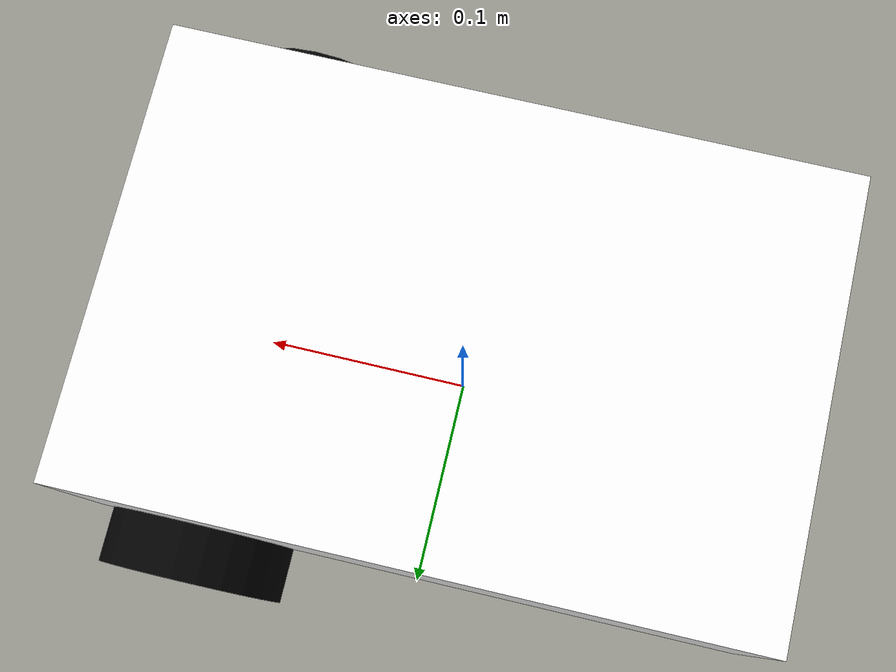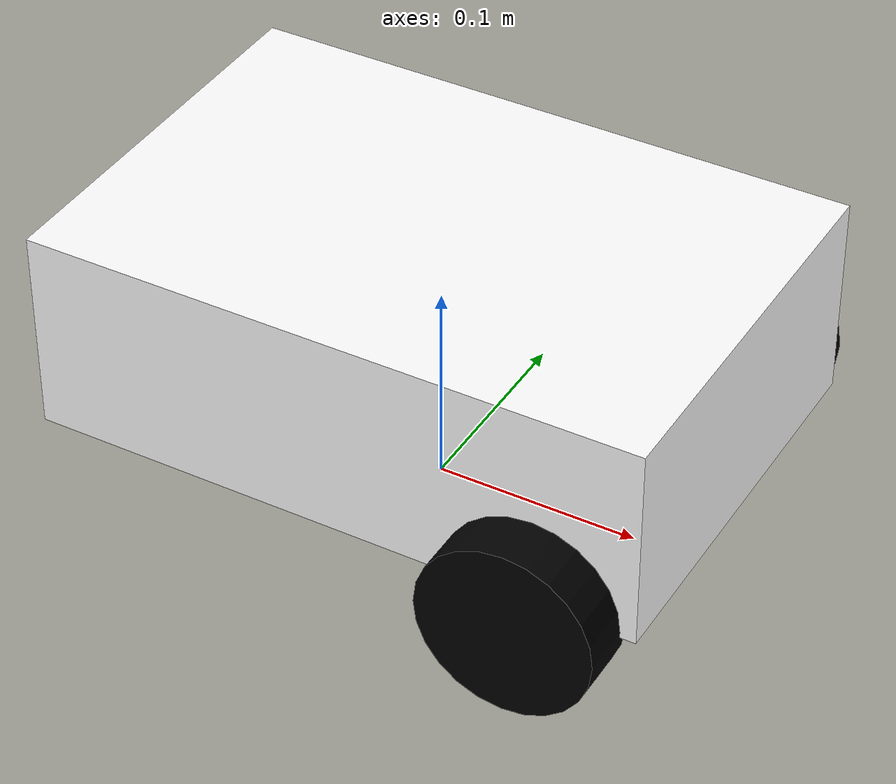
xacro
<?xml version="1.0"?>
<robot xmlns:xacro="http://www.ros.org/wiki/xacro">

  <!-- PROPERTIES (tweak here if needed) -->
  <xacro:property name="wheel_radius" value="0.0425"/>
  <xacro:property name="wheel_width"  value="0.03"/>
  <xacro:property name="wheel_separation" value="0.22"/>  <!-- distance between left and right wheel centers -->
  <xacro:property name="body_length" value="0.30"/>
  <xacro:property name="body_width"  value="0.20"/>
  <xacro:property name="body_height" value="0.10"/>
  <xacro:property name="base_z" value="0.09"/>

  <!-- MATERIALS -->
  <material name="blue"><color rgba="0 0 0.8 1"/></material>
  <material name="black"><color rgba="0 0 0 1"/></material>
  <material name="white"><color rgba="1 1 1 1"/></material>

  <!-- BASE LINK -->
  <link name="base_link">
    <visual>
      <origin xyz="0 0 ${base_z}"/>
      <geometry>
        <box size="${body_length} ${body_width} ${body_height}"/>
      </geometry>
      <material name="white"/>
    </visual>

    <collision>
      <origin xyz="0 0 ${base_z}"/>
      <geometry>
        <box size="${body_length} ${body_width} ${body_height}"/>
      </geometry>
    </collision>

    <inertial>
      <!-- Use a reasonable simple inertial (tweak for realistic sim) -->
      <origin xyz="0 0 ${base_z}"/>
      <mass value="3.0"/>
      <inertia ixx="0.03" iyy="0.03" izz="0.03" ixy="0.0" ixz="0.0" iyz="0.0"/>
    </inertial>
  </link>

  <!-- BASE FOOTPRINT (ground-level frame for navigation) -->
  <link name="base_footprint"/>

  <joint name="base_footprint_joint" type="fixed">
    <parent link="base_link"/>
    <child link="base_footprint"/>
    <origin xyz="0 0 -${base_z}"/>
  </joint>

  <!-- RIGHT WHEEL -->
  <link name="right_wheel">
    <visual>
      <!-- Cylinder oriented so rotation axis is Y (we rotate about Y) -->
      <origin rpy="1.5708 0 0" xyz="0 0 0"/>
      <geometry>
        <cylinder radius="${wheel_radius}" length="${wheel_width}"/>
      </geometry>
      <material name="black"/>
    </visual>

    <collision>
      <origin rpy="1.5708 0 0" xyz="0 0 0"/>
      <geometry>
        <cylinder radius="${wheel_radius}" length="${wheel_width}"/>
      </geometry>
    </collision>

    <inertial>
      <origin xyz="0 0 0"/>
      <mass value="0.3"/>
      <!-- approximate wheel inertia -->
      <inertia ixx="0.0005" iyy="0.0005" izz="0.0005" ixy="0.0" ixz="0.0" iyz="0.0"/>
    </inertial>
  </link>

  <joint name="body_right_wheel" type="continuous">
    <parent link="base_link"/>
    <child link="right_wheel"/>
    <!-- place wheel at front-right of base (x, y, z) -->
    <origin xyz="0.10 0.11 ${wheel_radius}"/>
    <!-- rotation axis: Y (spins to drive +x) -->
    <axis xyz="0 1 0"/>
  </joint>

  <!-- LEFT WHEEL -->
  <link name="left_wheel">
    <visual>
      <origin rpy="1.5708 0 0" xyz="0 0 0"/>
      <geometry>
        <cylinder radius="${wheel_radius}" length="${wheel_width}"/>
      </geometry>
      <material name="black"/>
    </visual>

    <collision>
      <origin rpy="1.5708 0 0" xyz="0 0 0"/>
      <geometry>
        <cylinder radius="${wheel_radius}" length="${wheel_width}"/>
      </geometry>
    </collision>

    <inertial>
      <origin xyz="0 0 0"/>
      <mass value="0.3"/>
      <inertia ixx="0.0005" iyy="0.0005" izz="0.0005" ixy="0.0" ixz="0.0" iyz="0.0"/>
    </inertial>
  </link>

  <joint name="body_left_wheel" type="continuous">
    <parent link="base_link"/>
    <child link="left_wheel"/>
    <origin xyz="0.10 -0.11 ${wheel_radius}"/>
    <axis xyz="0 1 0"/>
  </joint>

  <!-- CENTER SUPPORT (non-driven) -->
  <link name="center_spherical_wheel" type = "fixed">
    <visual>
      <origin xyz="-0.10 0 ${wheel_radius}"/>
      <geometry>
        <sphere radius="0.04"/>
      </geometry>
      <material name="blue"/>
    </visual>

    <collision>
      <origin xyz="-0.10 0 ${wheel_radius}"/>
      <geometry>
        <sphere radius="0.04"/>
      </geometry>
    </collision>

    <inertial>
      <mass value="0.05"/>
      <inertia ixx="1e-4" iyy="1e-4" izz="1e-4" ixy="0" ixz="0" iyz="0"/>
    </inertial>
  </link>
  <gazebo reference="center_spherical_wheel">
        <material>Gazebo/Black</material>
        <mu1 value="0.001"/>
        <mu2 value="0.001"/>
  </gazebo>

  <joint name="body_center_spherical_wheel" type="fixed">
    <parent link="base_link"/>
    <child link="center_spherical_wheel"/>
  </joint>

  <!-- Optional: simple placeholder collision geometry for wheels if needed -->
  <!-- (Already done above by using cylinder collision) -->

  <!--
       GAZEBO PLUGINS (for ROS2 integration)
 -->

  <!-- Differential-drive plugin: listens to /cmd_vel and actuates left/right joints -->
  <gazebo>
    <plugin name="gazebo_diff_drive" filename="libgazebo_ros_diff_drive.so">
      <ros>
        <namespace>/</namespace>
        <!-- ensure this matches where you will publish teleop cmd_vel -->
        <remapping>cmd_vel:=/cmd_vel</remapping>
      </ros>

      <!-- wheel iformation-->
      <left_joint>body_right_wheel</left_joint>
      <right_joint>body_left_wheel</right_joint>
      <wheel_separation>${wheel_separation}</wheel_separation>
      <wheel_diameter>0.08</wheel_diameter>

      <!-- limits-->
      <max_wheel_torque>5.0</max_wheel_torque>
      <max_wheel_acceleration>10.0</max_wheel_acceleration>

      <!--output-->
      <odometry_frame>odom</odometry_frame>
      <robot_base_frame>base_link</robot_base_frame>
      <publish_odometry>true</publish_odometry>
      <publish_wheel_tf>true</publish_wheel_tf> <!-- wheel->base_link TF -->
      <publish_odom_tf>true</publish_odom_tf>   <!-- odom->base_link TF -->

    </plugin>
  </gazebo>

</robot>
